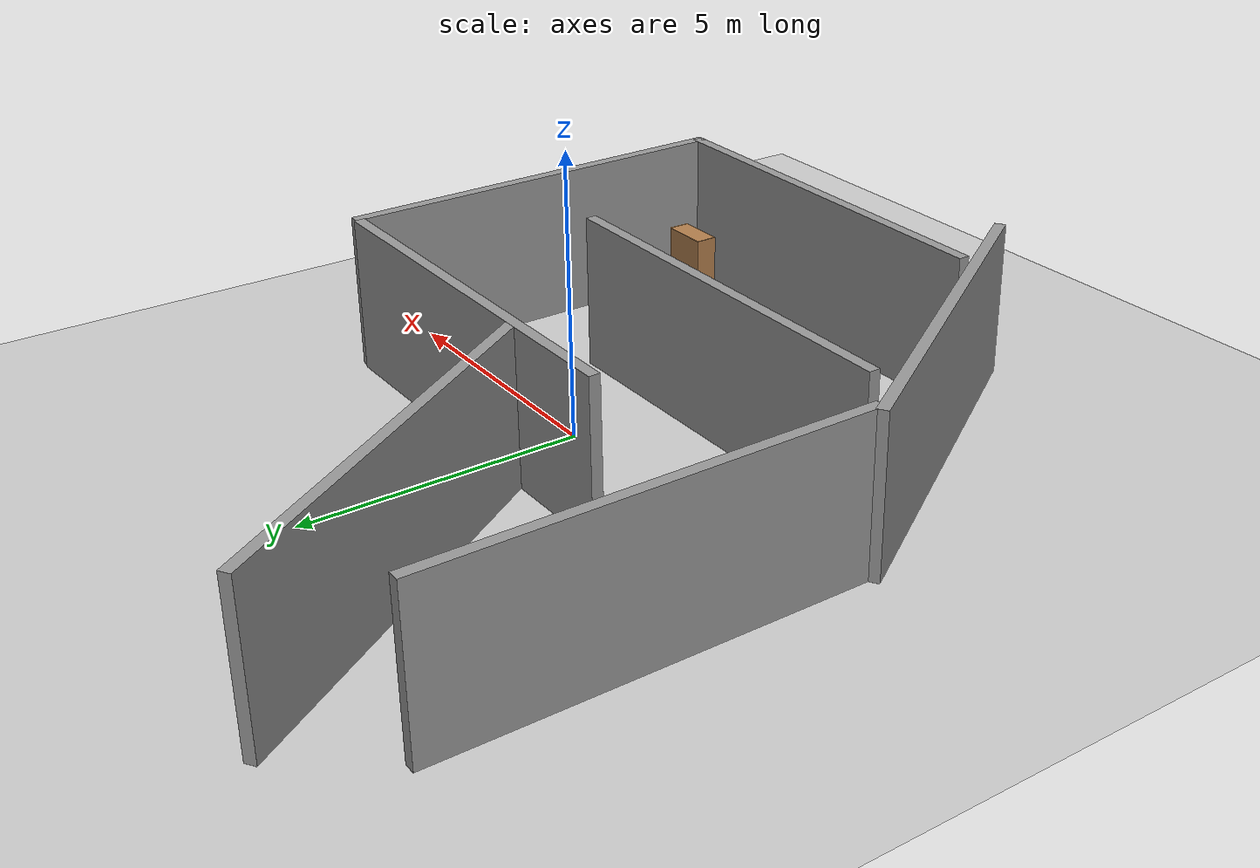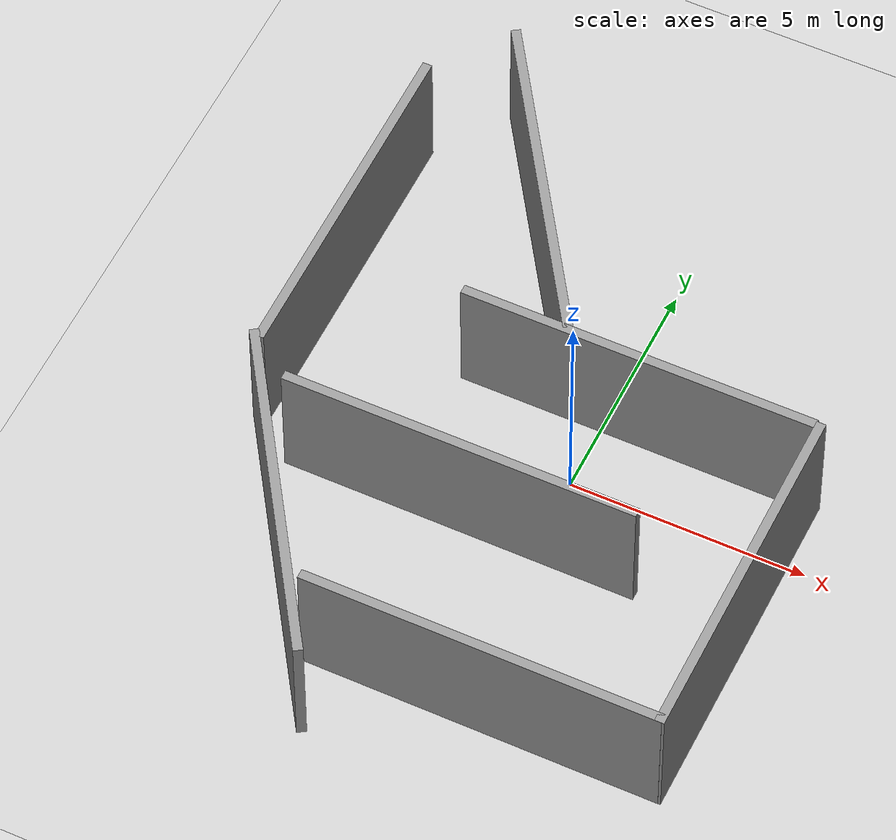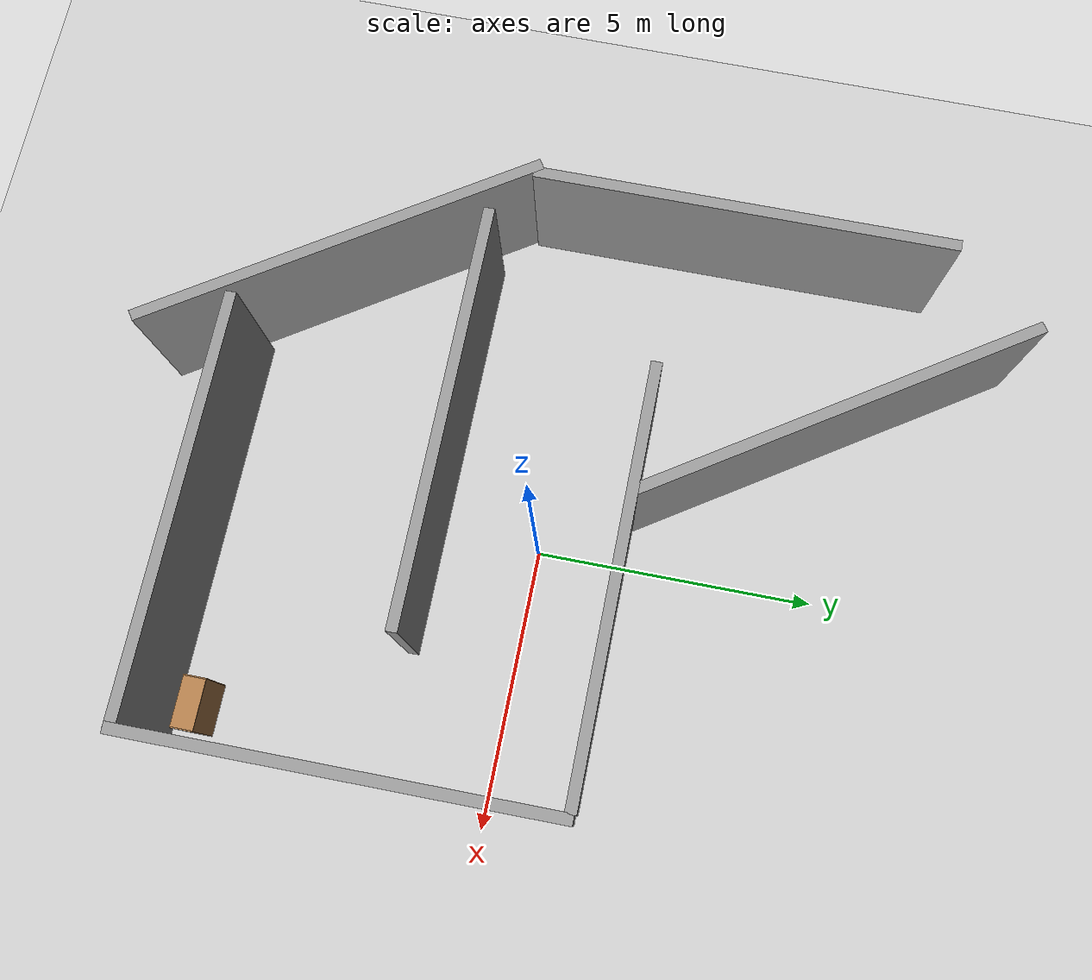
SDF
<sdf version="1.6">
 <world name="default">
  <light name="sun" type="directional">
   <pose>0 0 10 0 -0 0</pose>
   <diffuse>0.8 0.8 0.8 1</diffuse>
   <specular>0.2 0.2 0.2 1</specular>
   <attenuation>
    <range>1000</range>
    <constant>0.9</constant>
    <linear>0.01</linear>
    <quadratic>0.001</quadratic>
   </attenuation>
   <direction>-0.5 0.1 -0.9</direction>
  </light>
  <model name="ground_plane">
   <static>1</static>
   <link name="link">
    <collision name="collision">
     <geometry><plane><normal>0 0 1</normal><size>100 100</size></plane></geometry>
     <surface><friction><ode><mu>100</mu><mu2>50</mu2></ode></friction></surface>
    </collision>
    <visual name="visual">
     <cast_shadows>0</cast_shadows>
     <geometry><plane><normal>0 0 1</normal><size>100 100</size></plane></geometry>
     <material>
      <script><uri>file://media/materials/scripts/gazebo.material</uri><name>Gazebo/Grey</name></script>
     </material>
    </visual>
   </link>
  </model>
  <gravity>0 0 -9.8</gravity>
  <magnetic_field>6e-06 2.3e-05 -4.2e-05</magnetic_field>
  <atmosphere type="adiabatic"/>
  <physics name="default_physics" default="0" type="ode">
   <max_step_size>0.001</max_step_size>
   <real_time_factor>1</real_time_factor>
   <real_time_update_rate>1000</real_time_update_rate>
  </physics>
  <scene><ambient>0.4 0.4 0.4 1</ambient><background>0.7 0.7 0.7 1</background><shadows>1</shadows></scene>
  <audio><device>default</device></audio>
  <spherical_coordinates>
   <surface_model>EARTH_WGS84</surface_model>
   <latitude_deg>0</latitude_deg>
   <longitude_deg>0</longitude_deg>
   <elevation>0</elevation>
   <heading_deg>0</heading_deg>
  </spherical_coordinates>
  <model name="grey_wall">
   <static>1</static>
   <link name="link">
    <pose>0 0 1.4 0 -0 0</pose>
    <collision name="collision"><geometry><box><size>7.5 0.2 2.8</size></box></geometry></collision>
    <visual name="visual">
     <cast_shadows>0</cast_shadows>
     <geometry><box><size>7.5 0.2 2.8</size></box></geometry>
     <material>
      <script>
       <uri>model://grey_wall/materials/scripts</uri>
       <uri>model://grey_wall/materials/textures</uri>
       <name>vrc/grey_wall</name>
      </script>
     </material>
    </visual>
   </link>
   <pose>0.701593 1.50365 0 0 -0 0</pose>
  </model>
  <model name="grey_wall_clone">
   <static>1</static>
   <link name="link">
    <pose>0 0 1.4 0 -0 0</pose>
    <collision name="collision"><geometry><box><size>7.5 0.2 2.8</size></box></geometry></collision>
    <visual name="visual">
     <cast_shadows>0</cast_shadows>
     <geometry><box><size>7.5 0.2 2.8</size></box></geometry>
     <material>
      <script>
       <uri>model://grey_wall/materials/scripts</uri>
       <uri>model://grey_wall/materials/textures</uri>
       <name>vrc/grey_wall</name>
      </script>
     </material>
    </visual>
   </link>
   <pose>-1.51433 -1.84195 0 0 -0 0</pose>
  </model>
  <model name="grey_wall_0">
   <static>1</static>
   <link name="link">
    <pose>0 0 1.4 0 -0 0</pose>
    <collision name="collision"><geometry><box><size>7.5 0.2 2.8</size></box></geometry></collision>
    <visual name="visual">
     <cast_shadows>0</cast_shadows>
     <geometry><box><size>7.5 0.2 2.8</size></box></geometry>
     <material>
      <script>
       <uri>model://grey_wall/materials/scripts</uri>
       <uri>model://grey_wall/materials/textures</uri>
       <name>vrc/grey_wall</name>
      </script>
     </material>
    </visual>
   </link>
   <pose>4.53559 -2.18248 0 0 0 -1.56828</pose>
  </model>
  <model name="grey_wall_clone_0">
   <static>1</static>
   <link name="link">
    <pose>0 0 1.4 0 -0 0</pose>
    <collision name="collision"><geometry><box><size>7.5 0.2 2.8</size></box></geometry></collision>
    <visual name="visual">
     <cast_shadows>0</cast_shadows>
     <geometry><box><size>7.5 0.2 2.8</size></box></geometry>
     <material>
      <script>
       <uri>model://grey_wall/materials/scripts</uri>
       <uri>model://grey_wall/materials/textures</uri>
       <name>vrc/grey_wall</name>
      </script>
     </material>
    </visual>
   </link>
   <pose>0.838702 -5.83578 0 0 -0 0</pose>
  </model>
  <model name="grey_wall_clone_1">
   <static>1</static>
   <link name="link">
    <pose>0 0 1.4 0 -0 0</pose>
    <collision name="collision"><geometry><box><size>7.5 0.2 2.8</size></box></geometry></collision>
    <visual name="visual">
     <cast_shadows>0</cast_shadows>
     <geometry><box><size>7.5 0.2 2.8</size></box></geometry>
     <material>
      <script>
       <uri>model://grey_wall/materials/scripts</uri>
       <uri>model://grey_wall/materials/textures</uri>
       <name>vrc/grey_wall</name>
      </script>
     </material>
    </visual>
   </link>
   <pose>-4.21193 -4.25538 0 0 0 -0.992525</pose>
  </model>
  <model name="grey_wall_0_clone">
   <static>1</static>
   <link name="link">
    <pose>0 0 1.4 0 -0 0</pose>
    <collision name="collision"><geometry><box><size>7.5 0.2 2.8</size></box></geometry></collision>
    <visual name="visual">
     <cast_shadows>0</cast_shadows>
     <geometry><box><size>7.5 0.2 2.8</size></box></geometry>
     <material>
      <script>
       <uri>model://grey_wall/materials/scripts</uri>
       <uri>model://grey_wall/materials/textures</uri>
       <name>vrc/grey_wall</name>
      </script>
     </material>
    </visual>
   </link>
   <pose>-6.10658 2.5193 0 0 0 -1.56828</pose>
  </model>
  <model name="grey_wall_clone_1_clone">
   <static>1</static>
   <link name="link">
    <pose>0 0 1.4 0 -0 0</pose>
    <collision name="collision"><geometry><box><size>7.5 0.2 2.8</size></box></geometry></collision>
    <visual name="visual">
     <cast_shadows>0</cast_shadows>
     <geometry><box><size>7.5 0.2 2.8</size></box></geometry>
     <material>
      <script>
       <uri>model://grey_wall/materials/scripts</uri>
       <uri>model://grey_wall/materials/textures</uri>
       <name>vrc/grey_wall</name>
      </script>
     </material>
    </visual>
   </link>
   <pose>-2.85904 4.6869 0 0 0 -0.992525</pose>
  </model>
  <model name="bookshelf">
   <static>1</static>
   <link name="link">
    <inertial><mass>1</mass></inertial>
    <collision name="back">
     <pose>0 0.005 0.6 0 -0 0</pose>
     <geometry><box><size>0.9 0.01 1.2</size></box></geometry>
    </collision>
    <visual name="visual1">
     <pose>0 0.005 0.6 0 -0 0</pose>
     <geometry><box><size>0.9 0.01 1.2</size></box></geometry>
     <material>
      <script><uri>file://media/materials/scripts/gazebo.material</uri><name>Gazebo/Wood</name></script>
     </material>
    </visual>
    <collision name="left_side">
     <pose>0.45 -0.195 0.6 0 -0 0</pose>
     <geometry><box><size>0.02 0.4 1.2</size></box></geometry>
    </collision>
    <visual name="visual2">
     <pose>0.45 -0.195 0.6 0 -0 0</pose>
     <geometry><box><size>0.02 0.4 1.2</size></box></geometry>
     <material>
      <script><uri>file://media/materials/scripts/gazebo.material</uri><name>Gazebo/Wood</name></script>
     </material>
    </visual>
    <collision name="right_side">
     <pose>-0.45 -0.195 0.6 0 -0 0</pose>
     <geometry><box><size>0.02 0.4 1.2</size></box></geometry>
    </collision>
    <visual name="visual3">
     <pose>-0.45 -0.195 0.6 0 -0 0</pose>
     <geometry><box><size>0.02 0.4 1.2</size></box></geometry>
     <material>
      <script><uri>file://media/materials/scripts/gazebo.material</uri><name>Gazebo/Wood</name></script>
     </material>
    </visual>
    <collision name="bottom">
     <pose>0 -0.195 0.03 0 -0 0</pose>
     <geometry><box><size>0.88 0.4 0.06</size></box></geometry>
    </collision>
    <visual name="visual4">
     <pose>0 -0.195 0.03 0 -0 0</pose>
     <geometry><box><size>0.88 0.4 0.06</size></box></geometry>
     <material>
      <script><uri>file://media/materials/scripts/gazebo.material</uri><name>Gazebo/Wood</name></script>
     </material>
    </visual>
    <collision name="top">
     <pose>0 -0.195 1.19 0 -0 0</pose>
     <geometry><box><size>0.88 0.4 0.02</size></box></geometry>
    </collision>
    <visual name="visual5">
     <pose>0 -0.195 1.19 0 -0 0</pose>
     <geometry><box><size>0.88 0.4 0.02</size></box></geometry>
     <material>
      <script><uri>file://media/materials/scripts/gazebo.material</uri><name>Gazebo/Wood</name></script>
     </material>
    </visual>
    <collision name="low_shelf">
     <pose>0 -0.195 0.43 0 -0 0</pose>
     <geometry><box><size>0.88 0.4 0.02</size></box></geometry>
    </collision>
    <visual name="visual6">
     <pose>0 -0.195 0.43 0 -0 0</pose>
     <geometry><box><size>0.88 0.4 0.02</size></box></geometry>
     <material>
      <script><uri>file://media/materials/scripts/gazebo.material</uri><name>Gazebo/Wood</name></script>
     </material>
    </visual>
    <collision name="high_shelf">
     <pose>0 -0.195 0.8 0 -0 0</pose>
     <geometry><box><size>0.88 0.4 0.02</size></box></geometry>
    </collision>
    <visual name="visual7">
     <pose>0 -0.195 0.8 0 -0 0</pose>
     <geometry><box><size>0.88 0.4 0.02</size></box></geometry>
     <material>
      <script><uri>file://media/materials/scripts/gazebo.material</uri><name>Gazebo/Wood</name></script>
     </material>
    </visual>
   </link>
   <pose>3.88454 -5.02262 0 0 -0 0</pose>
  </model>
 </world>
</sdf>
